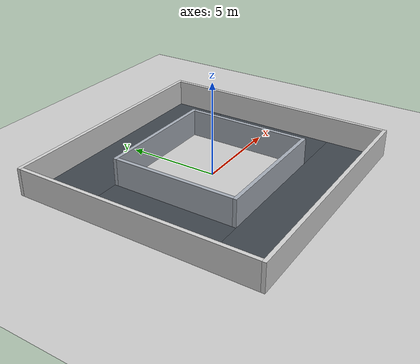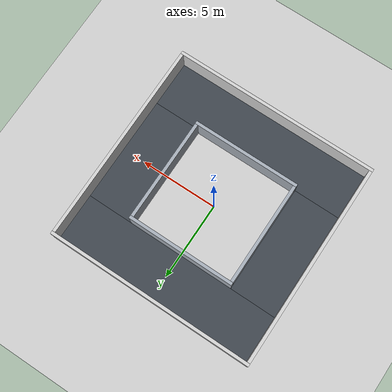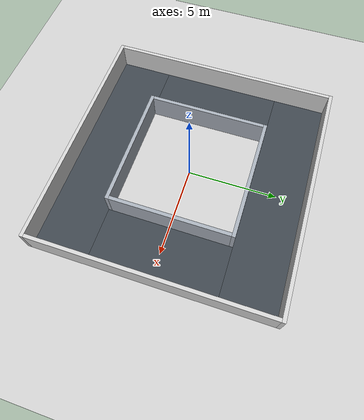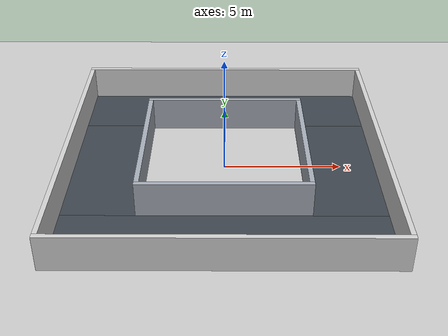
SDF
<?xml version="1.0"?>
<sdf version="1.6">
  <world name="hui_path">
    <gravity>0 0 -9.8</gravity>
    <physics name="default_physics" type="ode">
      <max_step_size>0.001</max_step_size>
      <real_time_factor>1.0</real_time_factor>
      <real_time_update_rate>1000</real_time_update_rate>
    </physics>

    <scene>
      <ambient>0.45 0.45 0.45 1</ambient>
      <background>0.75 0.80 0.85 1</background>
      <shadows>true</shadows>
    </scene>

    <include>
      <uri>model://sun</uri>
    </include>
    <include>
      <uri>model://ground_plane</uri>
    </include>

    <model name="hui_path_walls">
      <static>true</static>

      <link name="outer_north">
        <pose>0 6.6 0.75 0 0 0</pose>
        <collision name="collision"><geometry><box><size>13.4 0.2 1.5</size></box></geometry></collision>
        <visual name="visual"><geometry><box><size>13.4 0.2 1.5</size></box></geometry><material><ambient>0.72 0.72 0.72 1</ambient><diffuse>0.82 0.82 0.82 1</diffuse></material></visual>
      </link>
      <link name="outer_south">
        <pose>0 -6.6 0.75 0 0 0</pose>
        <collision name="collision"><geometry><box><size>13.4 0.2 1.5</size></box></geometry></collision>
        <visual name="visual"><geometry><box><size>13.4 0.2 1.5</size></box></geometry><material><ambient>0.72 0.72 0.72 1</ambient><diffuse>0.82 0.82 0.82 1</diffuse></material></visual>
      </link>
      <link name="outer_east">
        <pose>6.6 0 0.75 0 0 0</pose>
        <collision name="collision"><geometry><box><size>0.2 13.0 1.5</size></box></geometry></collision>
        <visual name="visual"><geometry><box><size>0.2 13.0 1.5</size></box></geometry><material><ambient>0.72 0.72 0.72 1</ambient><diffuse>0.82 0.82 0.82 1</diffuse></material></visual>
      </link>
      <link name="outer_west">
        <pose>-6.6 0 0.75 0 0 0</pose>
        <collision name="collision"><geometry><box><size>0.2 13.0 1.5</size></box></geometry></collision>
        <visual name="visual"><geometry><box><size>0.2 13.0 1.5</size></box></geometry><material><ambient>0.72 0.72 0.72 1</ambient><diffuse>0.82 0.82 0.82 1</diffuse></material></visual>
      </link>

      <link name="inner_north">
        <pose>0 3.4 0.75 0 0 0</pose>
        <collision name="collision"><geometry><box><size>7.0 0.2 1.5</size></box></geometry></collision>
        <visual name="visual"><geometry><box><size>7.0 0.2 1.5</size></box></geometry><material><ambient>0.55 0.58 0.62 1</ambient><diffuse>0.65 0.68 0.72 1</diffuse></material></visual>
      </link>
      <link name="inner_south">
        <pose>0 -3.4 0.75 0 0 0</pose>
        <collision name="collision"><geometry><box><size>7.0 0.2 1.5</size></box></geometry></collision>
        <visual name="visual"><geometry><box><size>7.0 0.2 1.5</size></box></geometry><material><ambient>0.55 0.58 0.62 1</ambient><diffuse>0.65 0.68 0.72 1</diffuse></material></visual>
      </link>
      <link name="inner_east">
        <pose>3.4 0 0.75 0 0 0</pose>
        <collision name="collision"><geometry><box><size>0.2 6.6 1.5</size></box></geometry></collision>
        <visual name="visual"><geometry><box><size>0.2 6.6 1.5</size></box></geometry><material><ambient>0.55 0.58 0.62 1</ambient><diffuse>0.65 0.68 0.72 1</diffuse></material></visual>
      </link>
      <link name="inner_west">
        <pose>-3.4 0 0.75 0 0 0</pose>
        <collision name="collision"><geometry><box><size>0.2 6.6 1.5</size></box></geometry></collision>
        <visual name="visual"><geometry><box><size>0.2 6.6 1.5</size></box></geometry><material><ambient>0.55 0.58 0.62 1</ambient><diffuse>0.65 0.68 0.72 1</diffuse></material></visual>
      </link>
    </model>

    <!-- Darker visual surface marks the 3 m-wide driveable ring. -->
    <model name="hui_path_surface">
      <static>true</static>
      <link name="surface">
        <visual name="north"><pose>0 5.0 0.006 0 0 0</pose><geometry><box><size>13.0 3.0 0.01</size></box></geometry><material><ambient>0.18 0.20 0.22 1</ambient><diffuse>0.24 0.27 0.30 1</diffuse></material></visual>
        <visual name="south"><pose>0 -5.0 0.006 0 0 0</pose><geometry><box><size>13.0 3.0 0.01</size></box></geometry><material><ambient>0.18 0.20 0.22 1</ambient><diffuse>0.24 0.27 0.30 1</diffuse></material></visual>
        <visual name="east"><pose>5.0 0 0.006 0 0 0</pose><geometry><box><size>3.0 7.0 0.01</size></box></geometry><material><ambient>0.18 0.20 0.22 1</ambient><diffuse>0.24 0.27 0.30 1</diffuse></material></visual>
        <visual name="west"><pose>-5.0 0 0.006 0 0 0</pose><geometry><box><size>3.0 7.0 0.01</size></box></geometry><material><ambient>0.18 0.20 0.22 1</ambient><diffuse>0.24 0.27 0.30 1</diffuse></material></visual>
      </link>
    </model>

    <gui fullscreen="0">
      <camera name="overview">
        <pose>12 -14 14 0 0.62 2.35</pose>
        <view_controller>orbit</view_controller>
      </camera>
    </gui>
  </world>
</sdf>
